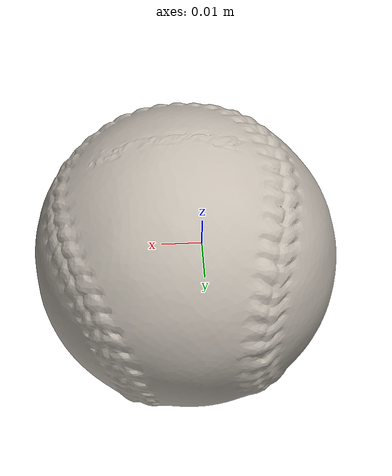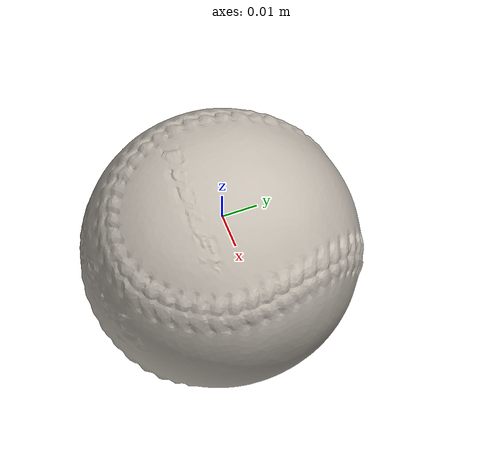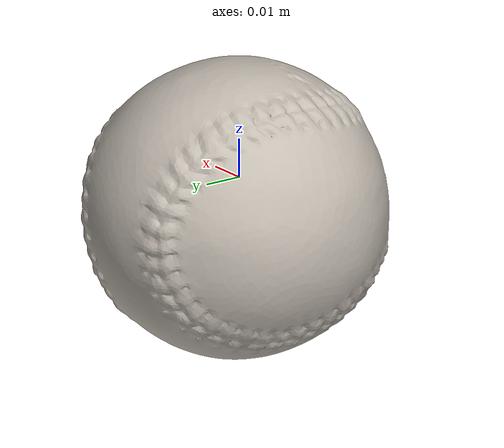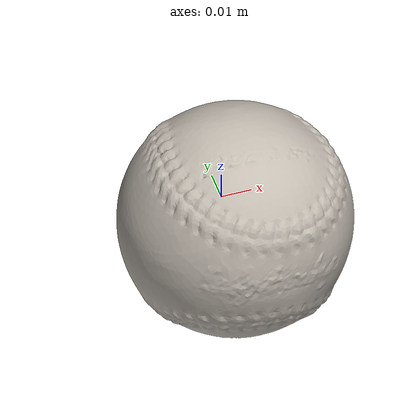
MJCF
<mujoco model="bread">
  <asset>
    <mesh file="nontextured.stl" name="obj_mesh" scale="0.8 0.8 0.8"/>
    <texture file="../../../../../textures/bread.png" type="2d" name="tex-bread" />
    <material name="bread" reflectance="0.7" texrepeat="15 15" texture="tex-bread" texuniform="true"/>
  </asset>
  <worldbody>
    <body>
      <body name="collision">
        <geom pos="0.019673000000000003 -0.010704000000000002 -0.0469735" mesh="obj_mesh" type="mesh" solimp="0.998 0.998 0.001" solref="0.001 1" density="50" friction="0.95 0.3 0.1"  material="bread" group="1" condim="4"/>
      </body>
      <body name="visual">
        <geom pos="0.019673000000000003 -0.010704000000000002 -0.0469735" mesh="obj_mesh" type="mesh" material="bread"  conaffinity="0" contype="0"  group="0" mass="0.0001"/>
        <geom pos="0.019673000000000003 -0.010704000000000002 -0.0469735" mesh="obj_mesh" type="mesh" material="bread"  conaffinity="0" contype="0"  group="1" mass="0.0001"/>
      </body>
      <site rgba="0 0 0 0" size="0.005" pos="0 0 -0.047295500000000004" name="bottom_site"/>
      <site rgba="0 0 0 0" size="0.005" pos="0 0 0.047295500000000004" name="top_site"/>
      <site rgba="0 0 0 0" size="0.005" pos="0.047685 0.048087000000000005 0.047295500000000004" name="horizontal_radius_site"/>
    </body>
  </worldbody>
</mujoco>
